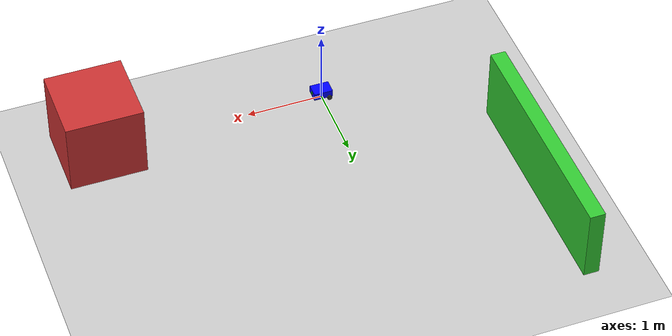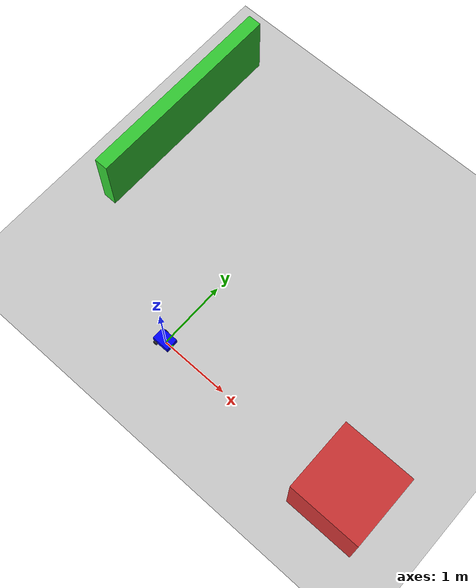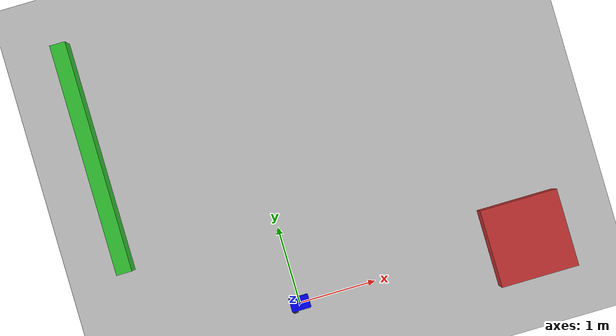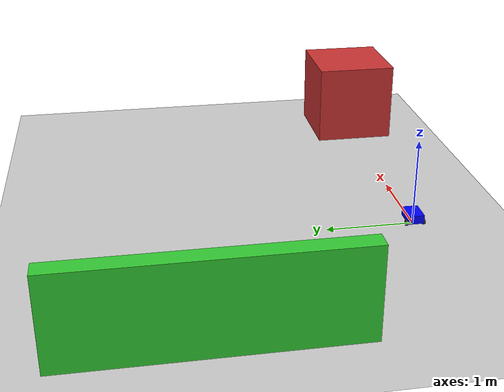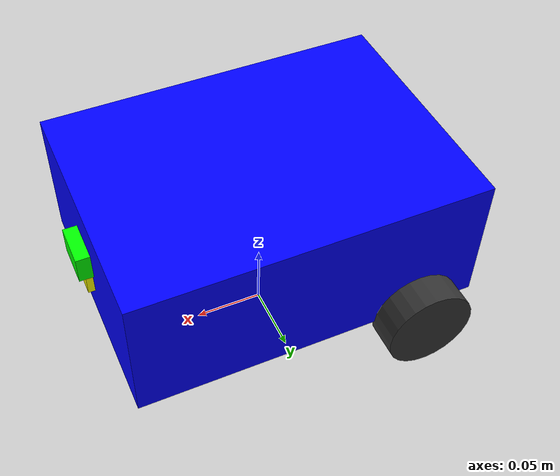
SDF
<?xml version="1.0"?>
<sdf version="1.7">
  <world name="test_obstacle">
    <physics name="1ms" type="ode">
      <real_time_update_rate>1000</real_time_update_rate>
      <max_step_size>0.001</max_step_size>
    </physics>
    <plugin
      filename="libignition-gazebo-physics-system.so"
      name="ignition::gazebo::systems::Physics">
    </plugin>
    <plugin
      filename="libignition-gazebo-user-commands-system.so"
      name="ignition::gazebo::systems::UserCommands">
    </plugin>
    <plugin
      filename="libignition-gazebo-scene-broadcaster-system.so"
      name="ignition::gazebo::systems::SceneBroadcaster">
    </plugin>
    <include>
      <uri>https://fuel.gazebosim.org/1.0/OpenRobotics/models/Ground Plane</uri>
    </include>
    <include>
      <uri>https://fuel.gazebosim.org/1.0/OpenRobotics/models/Sun</uri>
    </include>

    <!-- Autocar Robot -->
    <include>
      <pose>0 0 0.05 0 0 0</pose>
      <name>autocar_car</name>
      <uri>model://autocar_car</uri>
    </include>

    <!-- Obstacles -->
    <model name="obstacle_1">
      <static>true</static>
      <pose>3.0 0 0.5 0 0 0</pose>
      <link name="link">
        <collision name="collision">
          <geometry>
            <box>
              <size>1.0 1.0 1.0</size>
            </box>
          </geometry>
        </collision>
        <visual name="visual">
          <geometry>
            <box>
              <size>1.0 1.0 1.0</size>
            </box>
          </geometry>
          <material>
            <ambient>0.8 0.2 0.2 1</ambient>
          </material>
        </visual>
      </link>
    </model>

    <model name="obstacle_2">
      <static>true</static>
      <pose>-2.0 2.5 0.5 0 0 0</pose>
      <link name="link">
        <collision name="collision">
          <geometry>
            <box>
              <size>0.2 3.0 1.0</size>
            </box>
          </geometry>
        </collision>
        <visual name="visual">
          <geometry>
            <box>
              <size>0.2 3.0 1.0</size>
            </box>
          </geometry>
          <material>
            <ambient>0.2 0.8 0.2 1</ambient>
          </material>
        </visual>
      </link>
    </model>

    <!-- Arena boundary: 4 walls forming 30x20m rectangle -->
    <model name="boundary_north">
      <static>true</static>
      <pose>0 10 0.5 0 0 0</pose>
      <link name="link">
        <collision name="c">
          <geometry>
            <box>
              <size>30 0.2 1.0</size>
            </box>
          </geometry>
        </collision>
      </link>
    </model>

    <model name="boundary_south">
      <static>true</static>
      <pose>0 -10 0.5 0 0 0</pose>
      <link name="link">
        <collision name="c">
          <geometry>
            <box>
              <size>30 0.2 1.0</size>
            </box>
          </geometry>
        </collision>
      </link>
    </model>

    <model name="boundary_east">
      <static>true</static>
      <pose>15 0 0.5 0 0 0</pose>
      <link name="link">
        <collision name="c">
          <geometry>
            <box>
              <size>0.2 20 1.0</size>
            </box>
          </geometry>
        </collision>
      </link>
    </model>

    <model name="boundary_west">
      <static>true</static>
      <pose>-15 0 0.5 0 0 0</pose>
      <link name="link">
        <collision name="c">
          <geometry>
            <box>
              <size>0.2 20 1.0</size>
            </box>
          </geometry>
        </collision>
      </link>
    </model>
  </world>
</sdf>

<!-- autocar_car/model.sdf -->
<sdf version="1.7">
  <model name="autocar_car">
    <static>false</static>

    <!-- Chassis -->
    <link name="chassis">
      <pose>0 0 0.05 0 0 0</pose>
      <inertial>
        <mass>2.0</mass>
        <inertia>
          <ixx>0.00707</ixx>
          <ixy>0</ixy>
          <ixz>0</ixz>
          <iyy>0.01208</iyy>
          <iyz>0</iyz>
          <izz>0.01582</izz>
        </inertia>
      </inertial>
      <collision name="chassis_collision">
        <geometry>
          <box>
            <size>0.25 0.18 0.10</size>
          </box>
        </geometry>
      </collision>
      <visual name="chassis_visual">
        <geometry>
          <box>
            <size>0.25 0.18 0.10</size>
          </box>
        </geometry>
        <material>
          <ambient>0 0 1 1</ambient>
          <diffuse>0 0 1 1</diffuse>
          <specular>0.1 0.1 0.1 1</specular>
        </material>
      </visual>
    </link>

    <!-- Left Wheel -->
    <link name="left_wheel">
      <pose>-0.08 0.10 0 1.5708 0 0</pose>
      <inertial>
        <mass>0.1</mass>
        <inertia>
          <ixx>0.00003081</ixx>
          <ixy>0</ixy>
          <ixz>0</ixz>
          <iyy>0.00003081</iyy>
          <iyz>0</iyz>
          <izz>0.0000512</izz>
        </inertia>
      </inertial>
      <collision name="left_wheel_collision">
        <geometry>
          <cylinder>
            <radius>0.032</radius>
            <length>0.025</length>
          </cylinder>
        </geometry>
      </collision>
      <visual name="left_wheel_visual">
        <geometry>
          <cylinder>
            <radius>0.032</radius>
            <length>0.025</length>
          </cylinder>
        </geometry>
        <material>
          <ambient>0.2 0.2 0.2 1</ambient>
          <diffuse>0.2 0.2 0.2 1</diffuse>
          <specular>0.1 0.1 0.1 1</specular>
        </material>
      </visual>
    </link>

    <!-- Right Wheel -->
    <link name="right_wheel">
      <pose>-0.08 -0.10 0 1.5708 0 0</pose>
      <inertial>
        <mass>0.1</mass>
        <inertia>
          <ixx>0.00003081</ixx>
          <ixy>0</ixy>
          <ixz>0</ixz>
          <iyy>0.00003081</iyy>
          <iyz>0</iyz>
          <izz>0.0000512</izz>
        </inertia>
      </inertial>
      <collision name="right_wheel_collision">
        <geometry>
          <cylinder>
            <radius>0.032</radius>
            <length>0.025</length>
          </cylinder>
        </geometry>
      </collision>
      <visual name="right_wheel_visual">
        <geometry>
          <cylinder>
            <radius>0.032</radius>
            <length>0.025</length>
          </cylinder>
        </geometry>
        <material>
          <ambient>0.2 0.2 0.2 1</ambient>
          <diffuse>0.2 0.2 0.2 1</diffuse>
          <specular>0.1 0.1 0.1 1</specular>
        </material>
      </visual>
    </link>

    <!-- Caster Wheel -->
    <link name="caster_wheel">
      <pose>0.10 0 0.01 0 0 0</pose>
      <inertial>
        <mass>0.01</mass>
        <inertia>
          <ixx>0.0000009</ixx>
          <ixy>0</ixy>
          <ixz>0</ixz>
          <iyy>0.0000009</iyy>
          <iyz>0</iyz>
          <izz>0.0000009</izz>
        </inertia>
      </inertial>
      <collision name="caster_wheel_collision">
        <geometry>
          <sphere>
            <radius>0.015</radius>
          </sphere>
        </geometry>
      </collision>
      <visual name="caster_wheel_visual">
        <geometry>
          <sphere>
            <radius>0.015</radius>
          </sphere>
        </geometry>
        <material>
          <ambient>0.5 0.5 0.5 1</ambient>
          <diffuse>0.5 0.5 0.5 1</diffuse>
          <specular>0.1 0.1 0.1 1</specular>
        </material>
      </visual>
    </link>

    <!-- LiDAR -->
    <link name="lidar_link">
      <pose>0.12 0 0.06 0 0 0</pose>
      <inertial>
        <mass>0.05</mass>
        <inertia>
          <ixx>0.00001</ixx>
          <ixy>0</ixy>
          <ixz>0</ixz>
          <iyy>0.00001</iyy>
          <iyz>0</iyz>
          <izz>0.00001</izz>
        </inertia>
      </inertial>
      <visual name="lidar_visual">
        <geometry>
          <box>
            <size>0.03 0.03 0.02</size>
          </box>
        </geometry>
        <material>
          <ambient>0 1 0 1</ambient>
          <diffuse>0 1 0 1</diffuse>
          <specular>0.1 0.1 0.1 1</specular>
        </material>
      </visual>
      <sensor name="lidar_sensor" type="gpu_lidar">
        <lidar>
          <scan>
            <horizontal>
              <samples>360</samples>
              <resolution>1</resolution>
              <min_angle>0</min_angle>
              <max_angle>6.283</max_angle>
            </horizontal>
          </scan>
          <range>
            <min>0.05</min>
            <max>12.0</max>
          </range>
          <noise type="gaussian">
            <mean>0.0</mean>
            <stddev>0.02</stddev>
          </noise>
        </lidar>
        <update_rate>10</update_rate>
        <topic>/model/autocar_car/scan</topic>
      </sensor>
    </link>

    <!-- IMU -->
    <link name="imu_link">
      <pose>0 0 0.03 0 0 0</pose>
      <inertial>
        <mass>0.01</mass>
        <inertia>
          <ixx>0.000001</ixx>
          <ixy>0</ixy>
          <ixz>0</ixz>
          <iyy>0.000001</iyy>
          <iyz>0</iyz>
          <izz>0.000001</izz>
        </inertia>
      </inertial>
      <visual name="imu_visual">
        <geometry>
          <box>
            <size>0.01 0.01 0.01</size>
          </box>
        </geometry>
        <material>
          <ambient>0.5 0.5 0.5 1</ambient>
          <diffuse>0.5 0.5 0.5 1</diffuse>
        </material>
      </visual>
      <sensor name="imu_sensor" type="imu">
        <imu>
          <angular_velocity>
            <noise type="gaussian">
              <mean>0.0</mean>
              <stddev>0.01</stddev>
            </noise>
          </angular_velocity>
          <linear_acceleration>
            <noise type="gaussian">
              <mean>0.0</mean>
              <stddev>0.01</stddev>
            </noise>
          </linear_acceleration>
        </imu>
        <update_rate>100</update_rate>
        <topic>/model/autocar_car/imu</topic>
      </sensor>
    </link>

    <!-- GPS -->
    <link name="gps_link">
      <pose>0 0 0.04 0 0 0</pose>
      <inertial>
        <mass>0.01</mass>
        <inertia>
          <ixx>0.000001</ixx>
          <ixy>0</ixy>
          <ixz>0</ixz>
          <iyy>0.000001</iyy>
          <iyz>0</iyz>
          <izz>0.000001</izz>
        </inertia>
      </inertial>
      <visual name="gps_visual">
        <geometry>
          <box>
            <size>0.01 0.01 0.01</size>
          </box>
        </geometry>
        <material>
          <ambient>0.5 0.5 0.5 1</ambient>
          <diffuse>0.5 0.5 0.5 1</diffuse>
        </material>
      </visual>
      <sensor name="gps_sensor" type="navsat">
        <navigation_satellite>
          <noise type="gaussian">
            <mean>0.0</mean>
            <stddev>0.01</stddev>
          </noise>
        </navigation_satellite>
        <update_rate>10</update_rate>
        <topic>/model/autocar_car/gps</topic>
      </sensor>
    </link>

    <!-- Depth Camera -->
    <link name="depth_camera_link">
      <pose>0.12 0 0.04 0 0 0</pose>
      <inertial>
        <mass>0.05</mass>
        <inertia>
          <ixx>0.00001</ixx>
          <ixy>0</ixy>
          <ixz>0</ixz>
          <iyy>0.00001</iyy>
          <iyz>0</iyz>
          <izz>0.00001</izz>
        </inertia>
      </inertial>
      <visual name="depth_camera_visual">
        <geometry>
          <box>
            <size>0.02 0.02 0.02</size>
          </box>
        </geometry>
        <material>
          <ambient>1 1 0 1</ambient>
          <diffuse>1 1 0 1</diffuse>
          <specular>0.1 0.1 0.1 1</specular>
        </material>
      </visual>
      <sensor name="depth_camera_sensor" type="depth_camera">
        <camera>
          <horizontal_fov>1.047</horizontal_fov>
          <image>
            <width>640</width>
            <height>480</height>
          </image>
          <clip>
            <near>0.1</near>
            <far>10.0</far>
          </clip>
        </camera>
        <update_rate>15</update_rate>
        <topic>/model/autocar_car/depth_image</topic>
      </sensor>
    </link>

    <!-- Joints -->
    <joint name="left_wheel_joint" type="revolute">
      <parent>chassis</parent>
      <child>left_wheel</child>
      <axis>
        <xyz>0 1 0</xyz>
      </axis>
    </joint>

    <joint name="right_wheel_joint" type="revolute">
      <parent>chassis</parent>
      <child>right_wheel</child>
      <axis>
        <xyz>0 1 0</xyz>
      </axis>
    </joint>

    <joint name="caster_wheel_joint" type="ball">
      <parent>chassis</parent>
      <child>caster_wheel</child>
    </joint>

    <joint name="lidar_joint" type="fixed">
      <parent>chassis</parent>
      <child>lidar_link</child>
    </joint>

    <joint name="imu_joint" type="fixed">
      <parent>chassis</parent>
      <child>imu_link</child>
    </joint>

    <joint name="gps_joint" type="fixed">
      <parent>chassis</parent>
      <child>gps_link</child>
    </joint>

    <joint name="depth_camera_joint" type="fixed">
      <parent>chassis</parent>
      <child>depth_camera_link</child>
    </joint>

    <!-- Plugins -->
    <plugin filename="libignition-gazebo-diff-drive-system.so" name="gz::sim::systems::DiffDrive">
      <left_joint>left_wheel_joint</left_joint>
      <right_joint>right_wheel_joint</right_joint>
      <wheel_separation>0.20</wheel_separation>
      <wheel_radius>0.032</wheel_radius>
      <odom_publisher_frequency>50</odom_publisher_frequency>
      <topic>/model/autocar_car/cmd_vel</topic>
      <odom_topic>/model/autocar_car/odom</odom_topic>
      <tf_topic>/model/autocar_car/tf</tf_topic>
    </plugin>

  </model>
</sdf>
